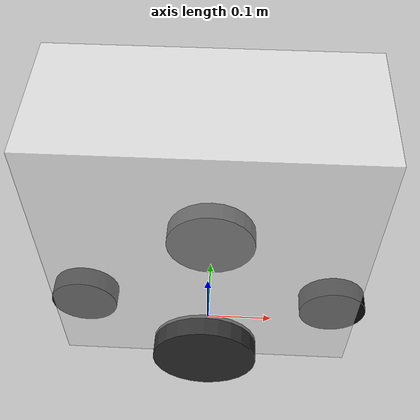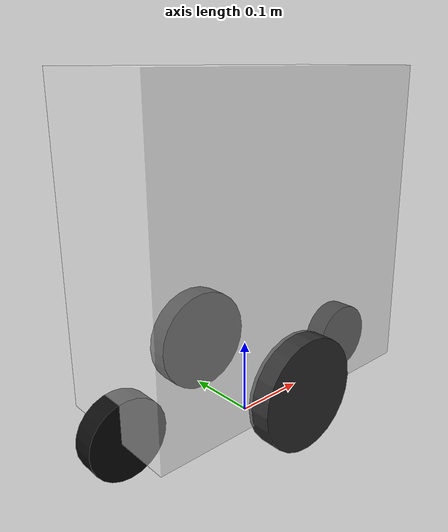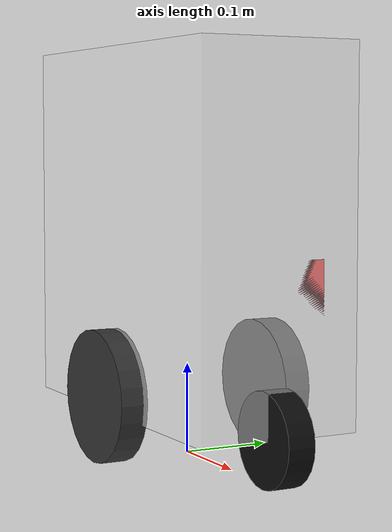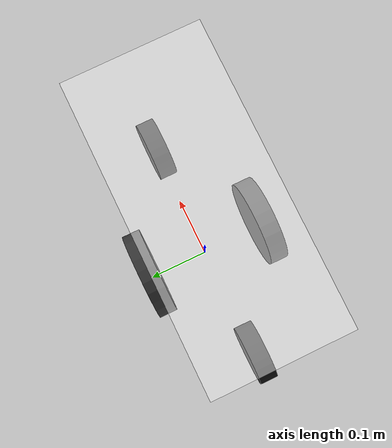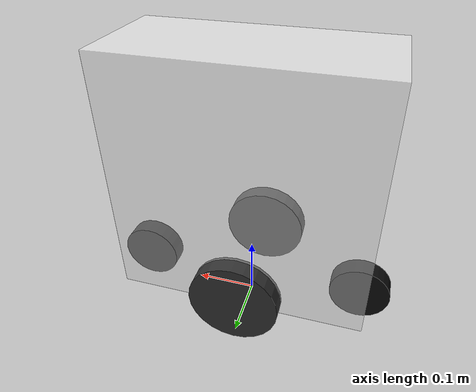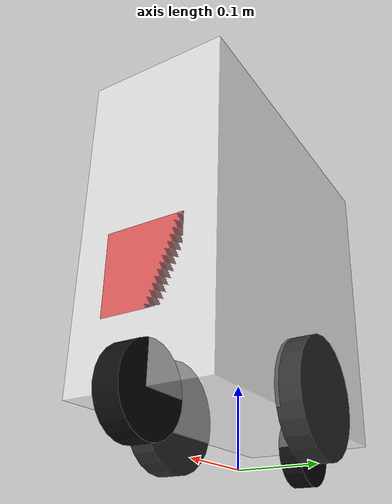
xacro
<?xml version="1.0"?>
<robot name="icart_mini" xmlns:xacro="http://ros.org/wiki/xacro">
  <xacro:property name="PI" value="3.1415926535897931"/>
  <xacro:property name="wheel_radius" value="0.0725"/>
  <xacro:property name="wheel_diameter" value="${2.0 * wheel_radius}"/>
  <xacro:property name="wheel_thickness" value="0.03"/>
  <xacro:property name="wheel_separation" value="0.2"/>
  <xacro:property name="caster_radius" value="0.05"/>
  <xacro:property name="caster_thickness" value="0.03"/>
  <xacro:property name="caster_offset_x" value="0.19"/>
  <xacro:property name="caster_height" value="${caster_radius}"/>
  <xacro:property name="base_size_x" value="0.4"/>
  <xacro:property name="base_size_y" value="0.18"/>
  <xacro:property name="base_size_z" value="0.4"/>
  <xacro:property name="base_height" value="0.25"/>
  <!-- Fortressでは脚・障害物との接触を再現するため、見た目の筐体寸法に合わせる。 -->
  <xacro:property name="base_collision_y" value="${base_size_y}"/>
  <xacro:property name="base_collision_z" value="${base_size_z}"/>
  <xacro:property name="base_collision_center_z" value="${base_height}"/>
  <xacro:property name="wheel_height" value="${wheel_radius}"/>
  <xacro:property name="laser_x" value="0.15"/>
  <xacro:property name="laser_y" value="0.0"/>
  <xacro:property name="laser_z" value="0.18"/>

  <xacro:macro name="box_inertia" params="mass x y z">
    <inertial>
      <mass value="${mass}"/>
      <inertia
        ixx="${mass * (y*y + z*z) / 12.0}"
        ixy="0.0"
        ixz="0.0"
        iyy="${mass * (x*x + z*z) / 12.0}"
        iyz="0.0"
        izz="${mass * (x*x + y*y) / 12.0}"/>
    </inertial>
  </xacro:macro>

  <xacro:macro name="cylinder_inertia_z" params="mass radius length">
    <inertial>
      <mass value="${mass}"/>
      <inertia
        ixx="${mass * (3.0 * radius * radius + length * length) / 12.0}"
        ixy="0.0"
        ixz="0.0"
        iyy="${mass * (3.0 * radius * radius + length * length) / 12.0}"
        iyz="0.0"
        izz="${mass * radius * radius / 2.0}"/>
    </inertial>
  </xacro:macro>

  <xacro:macro name="caster_wheel" params="prefix x">
    <joint name="${prefix}_caster_joint" type="continuous">
      <origin xyz="${x} 0 ${caster_height}" rpy="0 0 0"/>
      <axis xyz="0 1 0"/>
      <dynamics damping="0.01" friction="0.0"/>
      <parent link="base_link"/>
      <child link="${prefix}_caster_wheel"/>
    </joint>

    <link name="${prefix}_caster_wheel">
      <xacro:cylinder_inertia_z mass="0.2" radius="${caster_radius}" length="${caster_thickness}"/>
      <visual>
        <origin xyz="0 0 0" rpy="${PI/2} 0 0"/>
        <geometry>
          <cylinder length="${caster_thickness}" radius="${caster_radius}"/>
        </geometry>
        <material name="dark_gray">
          <color rgba="0.05 0.05 0.05 1.0"/>
        </material>
      </visual>
      <collision>
        <geometry>
          <sphere radius="${caster_radius}"/>
        </geometry>
      </collision>
    </link>

    <gazebo reference="${prefix}_caster_wheel">
      <material>Gazebo/DarkGrey</material>
      <mu1>0.05</mu1>
      <mu2>0.05</mu2>
    </gazebo>
  </xacro:macro>

  <link name="base_footprint"/>

  <joint name="base_joint" type="fixed">
    <origin xyz="0 0 0" rpy="0 0 0"/>
    <parent link="base_footprint"/>
    <child link="base_link"/>
  </joint>

  <link name="base_link">
    <xacro:box_inertia mass="12.0" x="${base_size_x}" y="${base_size_y}" z="${base_size_z}"/>
    <visual>
      <origin xyz="0 0 ${base_height}" rpy="0 0 0"/>
      <geometry>
        <box size="${base_size_x} ${base_size_y} ${base_size_z}"/>
      </geometry>
      <material name="white">
        <color rgba="1.0 1.0 1.0 0.5"/>
      </material>
    </visual>
    <collision>
      <origin xyz="0 0 ${base_collision_center_z}" rpy="0 0 0"/>
      <geometry>
        <box size="${base_size_x} ${base_collision_y} ${base_collision_z}"/>
      </geometry>
    </collision>
  </link>

  <joint type="continuous" name="left_wheel_joint">
    <axis xyz="0 0 1"/>
    <parent link="base_link"/>
    <child link="left_wheel"/>
    <origin rpy="-${PI/2} 0 0" xyz="0 ${wheel_separation/2} ${wheel_height}"/>
  </joint>

  <link name="left_wheel">
    <xacro:cylinder_inertia_z mass="0.5" radius="${wheel_radius}" length="${wheel_thickness}"/>
    <visual>
      <geometry>
        <cylinder length="${wheel_thickness}" radius="${wheel_radius}"/>
      </geometry>
      <material name="gray">
        <color rgba="0.2 0.2 0.2 1.0"/>
      </material>
    </visual>
    <collision>
      <geometry>
        <cylinder length="${wheel_thickness}" radius="${wheel_radius}"/>
      </geometry>
    </collision>
  </link>

  <joint type="continuous" name="right_wheel_joint">
    <axis xyz="0 0 1"/>
    <parent link="base_link"/>
    <child link="right_wheel"/>
    <origin rpy="-${PI/2} 0 0" xyz="0 -${wheel_separation/2} ${wheel_height}"/>
  </joint>

  <link name="right_wheel">
    <xacro:cylinder_inertia_z mass="0.5" radius="${wheel_radius}" length="${wheel_thickness}"/>
    <visual>
      <geometry>
        <cylinder length="${wheel_thickness}" radius="${wheel_radius}"/>
      </geometry>
      <material name="gray">
        <color rgba="0.2 0.2 0.2 1.0"/>
      </material>
    </visual>
    <collision>
      <geometry>
        <cylinder length="${wheel_thickness}" radius="${wheel_radius}"/>
      </geometry>
    </collision>
  </link>

  <xacro:caster_wheel prefix="front" x="${caster_offset_x}"/>
  <xacro:caster_wheel prefix="rear" x="-${caster_offset_x}"/>

  <joint name="scan_joint" type="fixed">
    <origin xyz="${laser_x} ${laser_y} ${laser_z}" rpy="0 0 0"/>
    <parent link="base_link"/>
    <child link="laser"/>
  </joint>

  <link name="laser">
    <xacro:box_inertia mass="0.2" x="0.1" y="0.1" z="0.1"/>
    <visual>
      <origin xyz="0 0 0" rpy="0 0 0"/>
      <geometry>
        <box size="0.1 0.1 0.1"/>
      </geometry>
      <material name="red">
        <color rgba="1 0 0 0.5"/>
      </material>
    </visual>
  </link>

  <gazebo reference="base_link">
    <material>Gazebo/White</material>
  </gazebo>

  <gazebo reference="left_wheel">
    <material>Gazebo/DarkGrey</material>
    <mu1>1.0</mu1>
    <mu2>1.0</mu2>
  </gazebo>

  <gazebo reference="right_wheel">
    <material>Gazebo/DarkGrey</material>
    <mu1>1.0</mu1>
    <mu2>1.0</mu2>
  </gazebo>

  <gazebo reference="laser">
    <material>Gazebo/Red</material>
    <sensor name="ust_10lx_sim" type="gpu_lidar">
      <topic>scan</topic>
      <always_on>true</always_on>
      <visualize>true</visualize>
      <update_rate>40.0</update_rate>
      <ray>
        <scan>
          <horizontal>
            <samples>1081</samples>
            <resolution>1</resolution>
            <min_angle>-2.35619449</min_angle>
            <max_angle>2.35619449</max_angle>
          </horizontal>
          <vertical>
            <samples>1</samples>
            <resolution>1</resolution>
            <min_angle>0.0</min_angle>
            <max_angle>0.0</max_angle>
          </vertical>
        </scan>
        <range>
          <min>0.06</min>
          <max>10.0</max>
          <resolution>0.001</resolution>
        </range>
        <noise>
          <type>gaussian</type>
          <mean>0.0</mean>
          <stddev>0.01</stddev>
        </noise>
        <!-- gpu_lidarはcollisionではなくvisualを見て/scanを作る。
             0x20000000をLiDAR専用bitにし、同じbitを持つvisualだけを検出対象にする。 -->
        <visibility_mask>536870912</visibility_mask>
      </ray>
    </sensor>
  </gazebo>

  <gazebo>
    <plugin filename="libignition-gazebo-joint-state-publisher-system.so"
            name="ignition::gazebo::systems::JointStatePublisher">
      <update_rate>50.0</update_rate>
      <topic>joint_states</topic>
      <joint_name>left_wheel_joint</joint_name>
      <joint_name>right_wheel_joint</joint_name>
      <joint_name>front_caster_joint</joint_name>
      <joint_name>rear_caster_joint</joint_name>
    </plugin>

    <plugin filename="libignition-gazebo-diff-drive-system.so"
            name="ignition::gazebo::systems::DiffDrive">
      <update_rate>50.0</update_rate>
      <left_joint>left_wheel_joint</left_joint>
      <right_joint>right_wheel_joint</right_joint>
      <wheel_separation>${wheel_separation}</wheel_separation>
      <wheel_radius>${wheel_radius}</wheel_radius>
      <max_wheel_torque>20.0</max_wheel_torque>
      <max_wheel_acceleration>2.0</max_wheel_acceleration>
      <odom_publish_frequency>50.0</odom_publish_frequency>
      <topic>cmd_vel</topic>
      <odometry_topic>odom</odometry_topic>
      <odometry_frame>odom</odometry_frame>
      <robot_base_frame>base_footprint</robot_base_frame>
    </plugin>
  </gazebo>
</robot>
